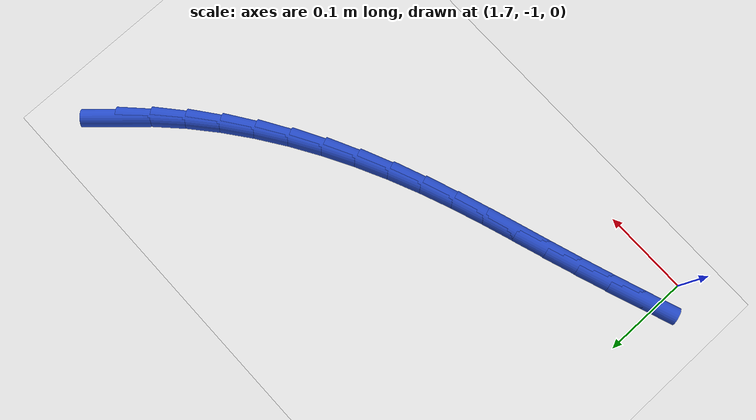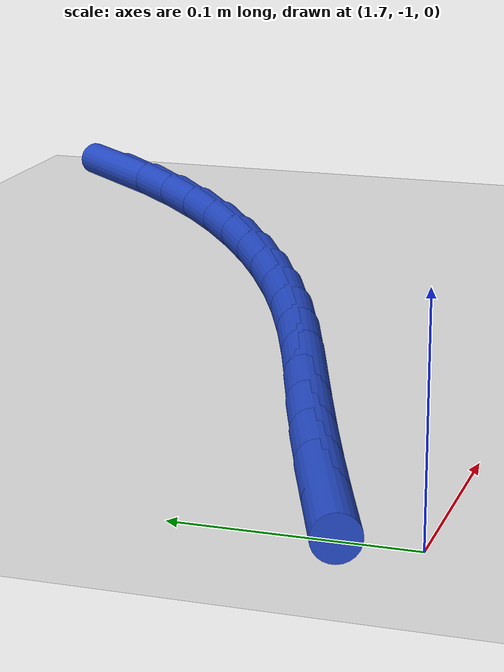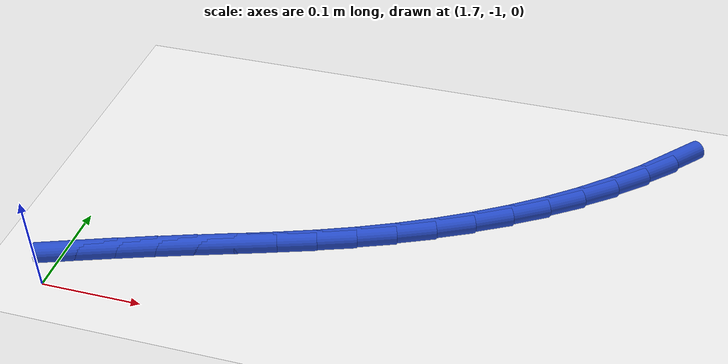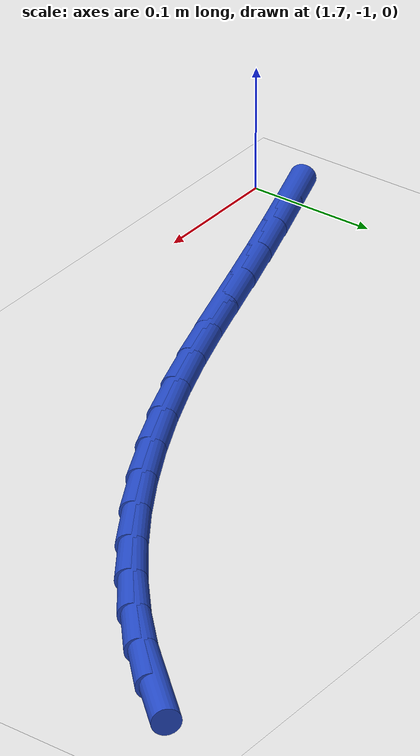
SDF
<sdf version="1.6">
 <world name="default">
  <model name="ground_plane">
   <static>1</static>
   <link name="link">
    <collision name="collision">
     <geometry><plane><normal>0 0 1</normal><size>100 100</size></plane></geometry>
     <surface><friction><ode><mu>100</mu><mu2>50</mu2></ode></friction></surface>
    </collision>
    <visual name="visual">
     <cast_shadows>0</cast_shadows>
     <geometry><plane><normal>0 0 1</normal><size>100 100</size></plane></geometry>
     <material>
      <script><uri>file://media/materials/scripts/gazebo.material</uri><name>Gazebo/WhiteGlow</name></script>
     </material>
    </visual>
   </link>
  </model>
  <model name="line">
   <link name="link_116">
    <pose>2.254524002423081 -0.6714195896179727 0.01 0 1.57 0.8355590163602612</pose>
    <collision name="collision">
     <geometry><cylinder><radius>0.01</radius><length>0.08</length></cylinder></geometry>
    </collision>
    <visual name="visual">
     <material>
      <script><name>Gazebo/Blue</name><uri>file://media/materials/scripts/gazebo.material</uri></script>
     </material>
     <geometry><cylinder><radius>0.01</radius><length>0.08</length></cylinder></geometry>
    </visual>
   </link>
   <link name="link_117">
    <pose>2.228574086586654 -0.7001127499172486 0.01 0 1.57 0.7694773627458475</pose>
    <collision name="collision">
     <geometry><cylinder><radius>0.01</radius><length>0.08</length></cylinder></geometry>
    </collision>
    <visual name="visual">
     <material>
      <script><name>Gazebo/Blue</name><uri>file://media/materials/scripts/gazebo.material</uri></script>
     </material>
     <geometry><cylinder><radius>0.01</radius><length>0.08</length></cylinder></geometry>
    </visual>
   </link>
   <link name="link_118">
    <pose>2.2007518743294923 -0.7270628691190902 0.01 0 1.57 0.7076187489693732</pose>
    <collision name="collision">
     <geometry><cylinder><radius>0.01</radius><length>0.08</length></cylinder></geometry>
    </collision>
    <visual name="visual">
     <material>
      <script><name>Gazebo/Blue</name><uri>file://media/materials/scripts/gazebo.material</uri></script>
     </material>
     <geometry><cylinder><radius>0.01</radius><length>0.08</length></cylinder></geometry>
    </visual>
   </link>
   <link name="link_119">
    <pose>2.1712436295443918 -0.7523041219802146 0.01 0 1.57 0.649880079240617</pose>
    <collision name="collision">
     <geometry><cylinder><radius>0.01</radius><length>0.08</length></cylinder></geometry>
    </collision>
    <visual name="visual">
     <material>
      <script><name>Gazebo/Blue</name><uri>file://media/materials/scripts/gazebo.material</uri></script>
     </material>
     <geometry><cylinder><radius>0.01</radius><length>0.08</length></cylinder></geometry>
    </visual>
   </link>
   <link name="link_120">
    <pose>2.1402356161241465 -0.7758706832573377 0.01 0 1.57 0.5960632447686975</pose>
    <collision name="collision">
     <geometry><cylinder><radius>0.01</radius><length>0.08</length></cylinder></geometry>
    </collision>
    <visual name="visual">
     <material>
      <script><name>Gazebo/Blue</name><uri>file://media/materials/scripts/gazebo.material</uri></script>
     </material>
     <geometry><cylinder><radius>0.01</radius><length>0.08</length></cylinder></geometry>
    </visual>
   </link>
   <link name="link_121">
    <pose>2.1079140979615505 -0.7977967277071764 0.01 0 1.57 0.5459068200165511</pose>
    <collision name="collision">
     <geometry><cylinder><radius>0.01</radius><length>0.08</length></cylinder></geometry>
    </collision>
    <visual name="visual">
     <material>
      <script><name>Gazebo/Blue</name><uri>file://media/materials/scripts/gazebo.material</uri></script>
     </material>
     <geometry><cylinder><radius>0.01</radius><length>0.08</length></cylinder></geometry>
    </visual>
   </link>
   <link name="link_122">
    <pose>2.0744653389493974 -0.8181164300864469 0.01 0 1.57 0.49911131701218836</pose>
    <collision name="collision">
     <geometry><cylinder><radius>0.01</radius><length>0.08</length></cylinder></geometry>
    </collision>
    <visual name="visual">
     <material>
      <script><name>Gazebo/Blue</name><uri>file://media/materials/scripts/gazebo.material</uri></script>
     </material>
     <geometry><cylinder><radius>0.01</radius><length>0.08</length></cylinder></geometry>
    </visual>
   </link>
   <link name="link_123">
    <pose>2.040075602980483 -0.836863965151866 0.01 0 1.57 0.45535777668506444</pose>
    <collision name="collision">
     <geometry><cylinder><radius>0.01</radius><length>0.08</length></cylinder></geometry>
    </collision>
    <visual name="visual">
     <material>
      <script><name>Gazebo/Blue</name><uri>file://media/materials/scripts/gazebo.material</uri></script>
     </material>
     <geometry><cylinder><radius>0.01</radius><length>0.08</length></cylinder></geometry>
    </visual>
   </link>
   <link name="link_124">
    <pose>2.0049311539476005 -0.85407350766015 0.01 0 1.57 0.4143203456208416</pose>
    <collision name="collision">
     <geometry><cylinder><radius>0.01</radius><length>0.08</length></cylinder></geometry>
    </collision>
    <visual name="visual">
     <material>
      <script><name>Gazebo/Blue</name><uri>file://media/materials/scripts/gazebo.material</uri></script>
     </material>
     <geometry><cylinder><radius>0.01</radius><length>0.08</length></cylinder></geometry>
    </visual>
   </link>
   <link name="link_125">
    <pose>1.9692182557435447 -0.8697792323680155 0.01 0 1.57 0.37579022739247325</pose>
    <collision name="collision">
     <geometry><cylinder><radius>0.01</radius><length>0.08</length></cylinder></geometry>
    </collision>
    <visual name="visual">
     <material>
      <script><name>Gazebo/Blue</name><uri>file://media/materials/scripts/gazebo.material</uri></script>
     </material>
     <geometry><cylinder><radius>0.01</radius><length>0.08</length></cylinder></geometry>
    </visual>
   </link>
   <link name="link_126">
    <pose>1.9331226637615657 -0.8840203701483118 0.01 0 1.57 0.34391903687261705</pose>
    <collision name="collision">
     <geometry><cylinder><radius>0.01</radius><length>0.08</length></cylinder></geometry>
    </collision>
    <visual name="visual">
     <material>
      <script><name>Gazebo/Blue</name><uri>file://media/materials/scripts/gazebo.material</uri></script>
     </material>
     <geometry><cylinder><radius>0.01</radius><length>0.08</length></cylinder></geometry>
    </visual>
   </link>
   <link name="link_127">
    <pose>1.8968110957527151 -0.8970254470877462 0.01 0 1.57 0.3244922394388925</pose>
    <collision name="collision">
     <geometry><cylinder><radius>0.01</radius><length>0.08</length></cylinder></geometry>
    </collision>
    <visual name="visual">
     <material>
      <script><name>Gazebo/Blue</name><uri>file://media/materials/scripts/gazebo.material</uri></script>
     </material>
     <geometry><cylinder><radius>0.01</radius><length>0.08</length></cylinder></geometry>
    </visual>
   </link>
   <link name="link_128">
    <pose>1.8604259532709118 -0.9092647702503092 0.01 0 1.57 0.3181197223452276</pose>
    <collision name="collision">
     <geometry><cylinder><radius>0.01</radius><length>0.08</length></cylinder></geometry>
    </collision>
    <visual name="visual">
     <material>
      <script><name>Gazebo/Blue</name><uri>file://media/materials/scripts/gazebo.material</uri></script>
     </material>
     <geometry><cylinder><radius>0.01</radius><length>0.08</length></cylinder></geometry>
    </visual>
   </link>
   <link name="link_129">
    <pose>1.8241080537998102 -0.9212243974382696 0.01 0 1.57 0.3242779514458839</pose>
    <collision name="collision">
     <geometry><cylinder><radius>0.01</radius><length>0.08</length></cylinder></geometry>
    </collision>
    <visual name="visual">
     <material>
      <script><name>Gazebo/Blue</name><uri>file://media/materials/scripts/gazebo.material</uri></script>
     </material>
     <geometry><cylinder><radius>0.01</radius><length>0.08</length></cylinder></geometry>
    </visual>
   </link>
   <link name="link_130">
    <pose>1.7879891896097022 -0.9333655342530196 0.01 0 1.57 0.33481227052044965</pose>
    <collision name="collision">
     <geometry><cylinder><radius>0.01</radius><length>0.08</length></cylinder></geometry>
    </collision>
    <visual name="visual">
     <material>
      <script><name>Gazebo/Blue</name><uri>file://media/materials/scripts/gazebo.material</uri></script>
     </material>
     <geometry><cylinder><radius>0.01</radius><length>0.08</length></cylinder></geometry>
    </visual>
   </link>
   <link name="link_131">
    <pose>1.7520938476588865 -0.9458539059497342 0.01 0 1.57 0.3442947904718622</pose>
    <collision name="collision">
     <geometry><cylinder><radius>0.01</radius><length>0.08</length></cylinder></geometry>
    </collision>
    <visual name="visual">
     <material>
      <script><name>Gazebo/Blue</name><uri>file://media/materials/scripts/gazebo.material</uri></script>
     </material>
     <geometry><cylinder><radius>0.01</radius><length>0.08</length></cylinder></geometry>
    </visual>
   </link>
   <link name="link_132">
    <pose>1.716376135012321 -0.9586614367977443 0.01 0 1.57 0.3525985321665666</pose>
    <collision name="collision">
     <geometry><cylinder><radius>0.01</radius><length>0.08</length></cylinder></geometry>
    </collision>
    <visual name="visual">
     <material>
      <script><name>Gazebo/Blue</name><uri>file://media/materials/scripts/gazebo.material</uri></script>
     </material>
     <geometry><cylinder><radius>0.01</radius><length>0.08</length></cylinder></geometry>
    </visual>
   </link>
  </model>
 </world>
</sdf>
